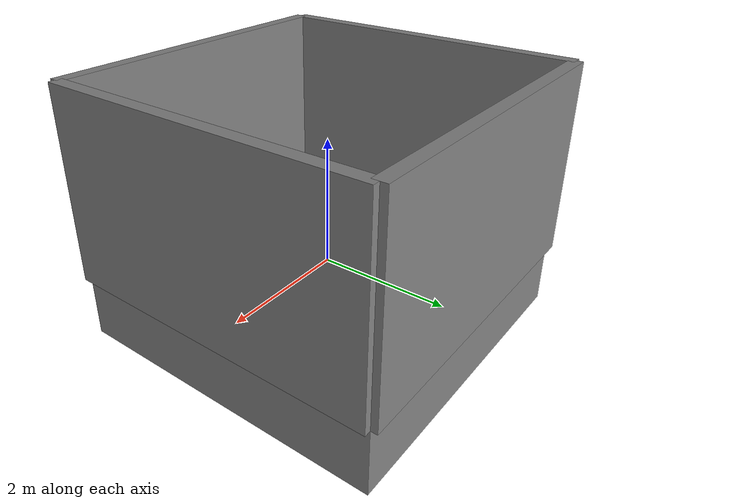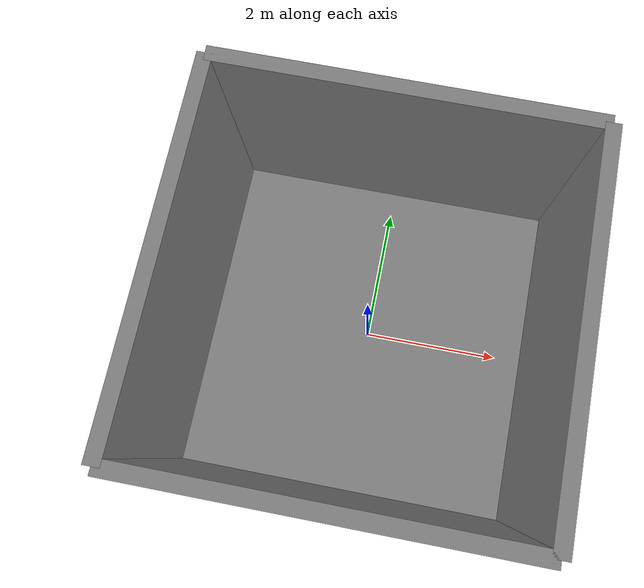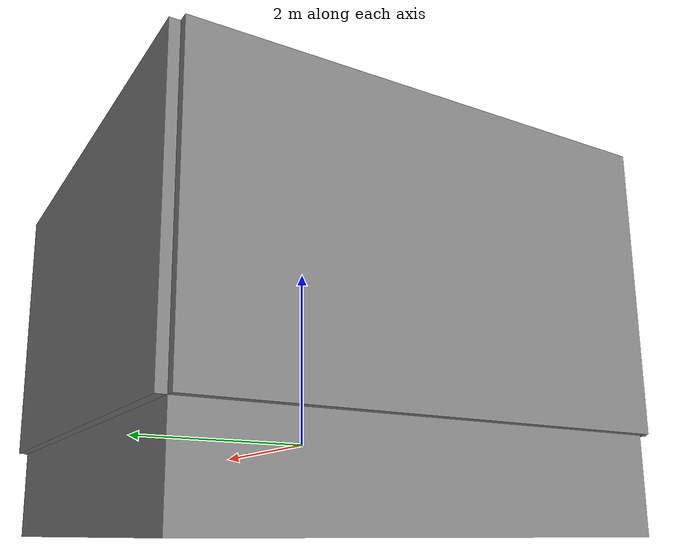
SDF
<?xml version="1.0" ?>
<sdf version="1.5">
  <model name="boxed_platform">
    <link name="base">
      <inertial>
        <mass>25.0</mass> <!-- total mass for platform + walls -->
        <inertia>
          <ixx>5.0</ixx>
          <ixy>0</ixy>
          <ixz>0</ixz>
          <iyy>5.0</iyy>
          <iyz>0</iyz>
          <izz>5.0</izz>
        </inertia>
      </inertial>

      <!-- Center platform -->
      <visual name="platform_visual">
        <pose>0 0 -0.5 0 0 0</pose>
        <geometry>
          <box>
            <size>5 5 1</size>
          </box>
        </geometry>
        <material>
          <ambient>0.3 0.3 0.3 1</ambient>
          <diffuse>0.5 0.5 0.5 1</diffuse>
        </material>
      </visual>
      <collision name="platform_collision">
        <pose>0 0 -0.5 0 0 0</pose>
        <geometry>
          <box>
            <size>5 5 1</size>
          </box>
        </geometry>
      </collision>

      <!-- North wall -->
      <visual name="wall_north_visual">
        <pose>0 2.5 1.5 0 0 0</pose>
        <geometry>
          <box>
            <size>5 0.2 3</size>
          </box>
        </geometry>
        <material>
          <ambient>0.3 0.3 0.3 1</ambient>
          <diffuse>0.5 0.5 0.5 1</diffuse>
        </material>
      </visual>
      <collision name="wall_north_collision">
        <pose>0 2.5 1.5 0 0 0</pose>
        <geometry>
          <box>
            <size>5 0.2 3</size>
          </box>
        </geometry>
      </collision>

      <!-- South wall -->
      <visual name="wall_south_visual">
        <pose>0 -2.5 1.5 0 0 0</pose>
        <geometry>
          <box>
            <size>5 0.2 3</size>
          </box>
        </geometry>
        <material>
          <ambient>0.3 0.3 0.3 1</ambient>
          <diffuse>0.5 0.5 0.5 1</diffuse>
        </material>
      </visual>
      <collision name="wall_south_collision">
        <pose>0 -2.5 1.5 0 0 0</pose>
        <geometry>
          <box>
            <size>5 0.2 3</size>
          </box>
        </geometry>
      </collision>

      <!-- East wall -->
      <visual name="wall_east_visual">
        <pose>2.5 0 1.5 0 0 0</pose>
        <geometry>
          <box>
            <size>0.2 5 3</size>
          </box>
        </geometry>
        <material>
          <ambient>0.3 0.3 0.3 1</ambient>
          <diffuse>0.5 0.5 0.5 1</diffuse>
        </material>
      </visual>
      <collision name="wall_east_collision">
        <pose>2.5 0 1.5 0 0 0</pose>
        <geometry>
          <box>
            <size>0.2 5 3</size>
          </box>
        </geometry>
      </collision>

      <!-- West wall -->
      <visual name="wall_west_visual">
        <pose>-2.5 0 1.5 0 0 0</pose>
        <geometry>
          <box>
            <size>0.2 5 3</size>
          </box>
        </geometry>
        <material>
          <ambient>0.3 0.3 0.3 1</ambient>
          <diffuse>0.5 0.5 0.5 1</diffuse>
        </material>
      </visual>
      <collision name="wall_west_collision">
        <pose>-2.5 0 1.5 0 0 0</pose>
        <geometry>
          <box>
            <size>0.2 5 3</size>
          </box>
        </geometry>
      </collision>

    </link>
  </model>
</sdf>
